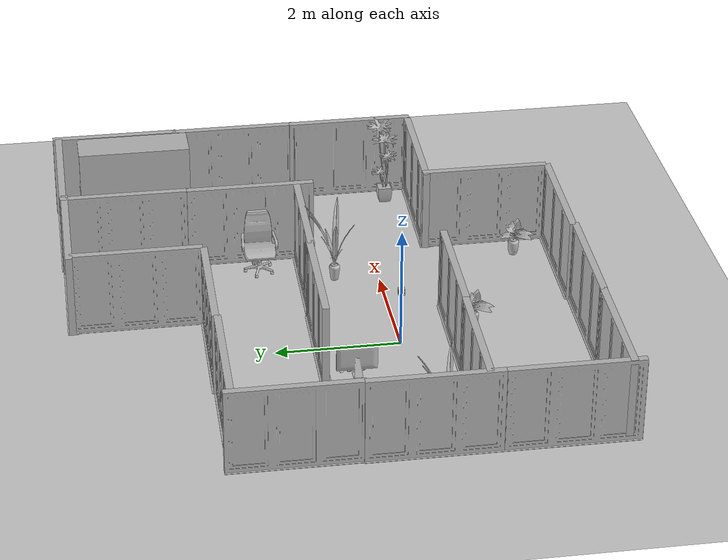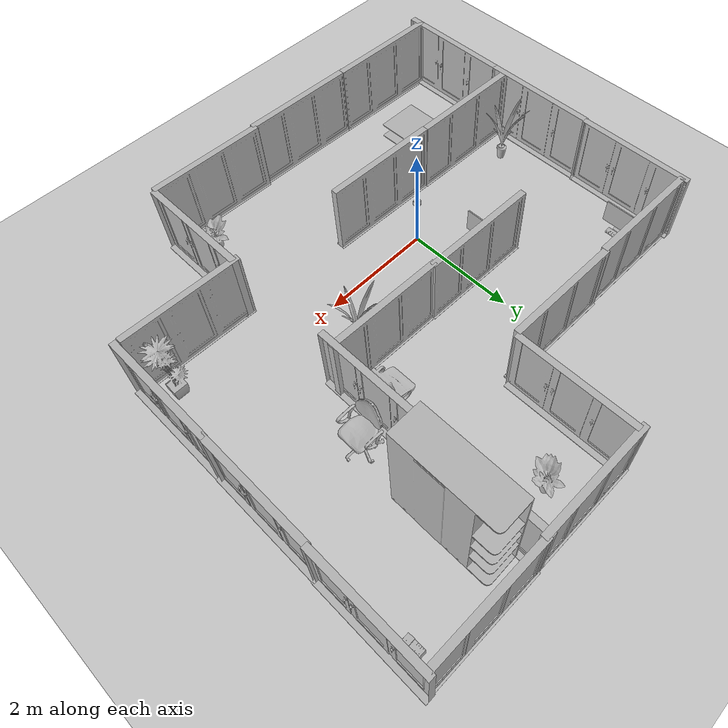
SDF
<sdf version="1.6">
 <world name="default">
  <light name="sun" type="directional">
   <pose>0 0 10 0 -0 0</pose>
   <diffuse>0.8 0.8 0.8 1</diffuse>
   <specular>0.2 0.2 0.2 1</specular>
   <attenuation>
    <range>1000</range>
    <constant>0.9</constant>
    <linear>0.01</linear>
    <quadratic>0.001</quadratic>
   </attenuation>
   <direction>-0.5 0.1 -0.9</direction>
  </light>
  <model name="ground_plane">
   <static>1</static>
   <link name="link">
    <collision name="collision">
     <geometry><plane><normal>0 0 1</normal><size>100 100</size></plane></geometry>
     <surface><friction><ode><mu>100</mu><mu2>50</mu2></ode></friction></surface>
    </collision>
    <visual name="visual">
     <cast_shadows>0</cast_shadows>
     <geometry><plane><normal>0 0 1</normal><size>100 100</size></plane></geometry>
     <material>
      <script><uri>file://media/materials/scripts/gazebo.material</uri><name>Gazebo/Grey</name></script>
     </material>
    </visual>
   </link>
  </model>
  <gravity>0 0 -9.8</gravity>
  <magnetic_field>6e-06 2.3e-05 -4.2e-05</magnetic_field>
  <atmosphere type="adiabatic"/>
  <physics name="default_physics" default="0" type="ode">
   <max_step_size>0.001</max_step_size>
   <real_time_factor>1</real_time_factor>
   <real_time_update_rate>1000</real_time_update_rate>
  </physics>
  <scene><ambient>0.4 0.4 0.4 1</ambient><background>0.7 0.7 0.7 1</background><shadows>1</shadows></scene>
  <audio><device>default</device></audio>
  <spherical_coordinates>
   <surface_model>EARTH_WGS84</surface_model>
   <latitude_deg>0</latitude_deg>
   <longitude_deg>0</longitude_deg>
   <elevation>0</elevation>
   <heading_deg>0</heading_deg>
  </spherical_coordinates>
  <model name="211">
   <pose>-3.12673 0.038973 0 0 -0 0</pose>
   <static>1</static>
   <link name="link">
    <collision name="collision"><geometry><box><size>0.175 2.1 2</size></box></geometry></collision>
    <visual name="visual"><geometry><mesh><uri>model://211/211.dae</uri></mesh></geometry></visual>
   </link>
  </model>
  <model name="211_clone_0">
   <pose>-3.1279 -2.05442 0 0 -0 0</pose>
   <static>1</static>
   <link name="link">
    <collision name="collision"><geometry><box><size>0.175 2.1 2</size></box></geometry></collision>
    <visual name="visual"><geometry><mesh><uri>model://211/211.dae</uri></mesh></geometry></visual>
   </link>
  </model>
  <model name="211_clone_1">
   <pose>3.03127 -1.93504 0 0 -0 0</pose>
   <static>1</static>
   <link name="link">
    <collision name="collision"><geometry><box><size>0.175 2.1 2</size></box></geometry></collision>
    <visual name="visual"><geometry><mesh><uri>model://211/211.dae</uri></mesh></geometry></visual>
   </link>
  </model>
  <model name="211_clone_0_clone_0">
   <pose>-3.10665 2.10308 0 0 -0 0</pose>
   <static>1</static>
   <link name="link">
    <collision name="collision"><geometry><box><size>0.175 2.1 2</size></box></geometry></collision>
    <visual name="visual"><geometry><mesh><uri>model://211/211.dae</uri></mesh></geometry></visual>
   </link>
  </model>
  <model name="211_clone_0_clone_1">
   <pose>2.97825 2.01371 0 0 -0 0</pose>
   <static>1</static>
   <link name="link">
    <collision name="collision"><geometry><box><size>0.175 2.1 2</size></box></geometry></collision>
    <visual name="visual"><geometry><mesh><uri>model://211/211.dae</uri></mesh></geometry></visual>
   </link>
  </model>
  <model name="211_clone_0_clone_clone_0">
   <pose>-2.11975 -2.92144 0 0 0 -1.59198</pose>
   <static>1</static>
   <link name="link">
    <collision name="collision"><geometry><box><size>0.175 2.1 2</size></box></geometry></collision>
    <visual name="visual"><geometry><mesh><uri>model://211/211.dae</uri></mesh></geometry></visual>
   </link>
  </model>
  <model name="211_clone_0_clone_clone_1">
   <pose>-0.068576 -2.97191 0 0 0 -1.59198</pose>
   <static>1</static>
   <link name="link">
    <collision name="collision"><geometry><box><size>0.175 2.1 2</size></box></geometry></collision>
    <visual name="visual"><geometry><mesh><uri>model://211/211.dae</uri></mesh></geometry></visual>
   </link>
  </model>
  <model name="211_clone_0_clone_clone_2">
   <pose>1.97542 -2.9754 0 0 0 -1.59198</pose>
   <static>1</static>
   <link name="link">
    <collision name="collision"><geometry><box><size>0.175 2.1 2</size></box></geometry></collision>
    <visual name="visual"><geometry><mesh><uri>model://211/211.dae</uri></mesh></geometry></visual>
   </link>
  </model>
  <model name="211_clone_0_clone_clone_3">
   <pose>-2.053 3.02059 0 0 0 -1.59198</pose>
   <static>1</static>
   <link name="link">
    <collision name="collision"><geometry><box><size>0.175 2.1 2</size></box></geometry></collision>
    <visual name="visual"><geometry><mesh><uri>model://211/211.dae</uri></mesh></geometry></visual>
   </link>
  </model>
  <model name="211_clone_0_clone_clone_4">
   <pose>0.020026 3.00685 0 0 0 -1.59198</pose>
   <static>1</static>
   <link name="link">
    <collision name="collision"><geometry><box><size>0.175 2.1 2</size></box></geometry></collision>
    <visual name="visual"><geometry><mesh><uri>model://211/211.dae</uri></mesh></geometry></visual>
   </link>
  </model>
  <model name="211_clone_0_clone_0_clone">
   <pose>2.98978 4.09154 0 0 -0 0</pose>
   <static>1</static>
   <link name="link">
    <collision name="collision"><geometry><box><size>0.175 2.1 2</size></box></geometry></collision>
    <visual name="visual"><geometry><mesh><uri>model://211/211.dae</uri></mesh></geometry></visual>
   </link>
  </model>
  <model name="211_clone_0_clone_0_clone_0">
   <pose>1.10358 4.04575 0 0 -0 0</pose>
   <static>1</static>
   <link name="link">
    <collision name="collision"><geometry><box><size>0.175 2.1 2</size></box></geometry></collision>
    <visual name="visual"><geometry><mesh><uri>model://211/211.dae</uri></mesh></geometry></visual>
   </link>
  </model>
  <model name="211_clone_0_clone_clone_4_clone">
   <pose>2.04836 5.09205 0 0 0 -1.59198</pose>
   <static>1</static>
   <link name="link">
    <collision name="collision"><geometry><box><size>0.175 2.1 2</size></box></geometry></collision>
    <visual name="visual"><geometry><mesh><uri>model://211/211.dae</uri></mesh></geometry></visual>
   </link>
  </model>
  <model name="211_clone_0_clone_clone_5">
   <pose>2.00007 1.2688 0 0 0 -1.59198</pose>
   <static>1</static>
   <link name="link">
    <collision name="collision"><geometry><box><size>0.175 2.1 2</size></box></geometry></collision>
    <visual name="visual"><geometry><mesh><uri>model://211/211.dae</uri></mesh></geometry></visual>
   </link>
  </model>
  <model name="211_clone_0_clone_clone_6">
   <pose>-0.022753 1.3299 0 0 0 -1.59198</pose>
   <static>1</static>
   <link name="link">
    <collision name="collision"><geometry><box><size>0.175 2.1 2</size></box></geometry></collision>
    <visual name="visual"><geometry><mesh><uri>model://211/211.dae</uri></mesh></geometry></visual>
   </link>
  </model>
  <model name="211_clone_0_clone_clone_7">
   <pose>-2.0861 -0.780774 0 0 0 -1.59198</pose>
   <static>1</static>
   <link name="link">
    <collision name="collision"><geometry><box><size>0.175 2.1 2</size></box></geometry></collision>
    <visual name="visual"><geometry><mesh><uri>model://211/211.dae</uri></mesh></geometry></visual>
   </link>
  </model>
  <model name="211_clone_0_clone_clone_8">
   <pose>-0.005205 -0.83229 0 0 0 -1.59198</pose>
   <static>1</static>
   <link name="link">
    <collision name="collision"><geometry><box><size>0.175 2.1 2</size></box></geometry></collision>
    <visual name="visual"><geometry><mesh><uri>model://211/211.dae</uri></mesh></geometry></visual>
   </link>
  </model>
  <model name="211_clone_0_clone_clone_10">
   <pose>3.98321 -0.956987 0 0 0 -1.59198</pose>
   <static>1</static>
   <link name="link">
    <collision name="collision"><geometry><box><size>0.175 2.1 2</size></box></geometry></collision>
    <visual name="visual"><geometry><mesh><uri>model://211/211.dae</uri></mesh></geometry></visual>
   </link>
  </model>
  <model name="211_clone_clone">
   <pose>5.10406 0.024895 0 0 -0 0</pose>
   <static>1</static>
   <link name="link">
    <collision name="collision"><geometry><box><size>0.175 2.1 2</size></box></geometry></collision>
    <visual name="visual"><geometry><mesh><uri>model://211/211.dae</uri></mesh></geometry></visual>
   </link>
  </model>
  <model name="211_clone_clone_0">
   <pose>5.1089 2.036 0 0 -0 0</pose>
   <static>1</static>
   <link name="link">
    <collision name="collision"><geometry><box><size>0.175 2.1 2</size></box></geometry></collision>
    <visual name="visual"><geometry><mesh><uri>model://211/211.dae</uri></mesh></geometry></visual>
   </link>
  </model>
  <model name="211_clone_clone_1">
   <pose>5.12226 4.09134 0 0 -0 0</pose>
   <static>1</static>
   <link name="link">
    <collision name="collision"><geometry><box><size>0.175 2.1 2</size></box></geometry></collision>
    <visual name="visual"><geometry><mesh><uri>model://211/211.dae</uri></mesh></geometry></visual>
   </link>
  </model>
  <model name="211_clone_0_clone_clone_9">
   <pose>4.06447 5.07381 0 0 0 -1.59198</pose>
   <static>1</static>
   <link name="link">
    <collision name="collision"><geometry><box><size>0.175 2.1 2</size></box></geometry></collision>
    <visual name="visual"><geometry><mesh><uri>model://211/211.dae</uri></mesh></geometry></visual>
   </link>
  </model>
  <model name="237">
   <pose>-2.57445 -0.258042 0 0 -0 0</pose>
   <static>1</static>
   <link name="link">
    <collision name="collision"><geometry><box><size>0.839248 0.825384 2</size></box></geometry></collision>
    <visual name="visual"><geometry><mesh><uri>model://237/237.dae</uri></mesh></geometry></visual>
   </link>
  </model>
  <model name="542">
   <pose>-1.81945 -1.89409 0 0 -0 0</pose>
   <static>1</static>
   <link name="link">
    <collision name="collision"><geometry><box><size>0.79 0.79 2</size></box></geometry></collision>
    <visual name="visual"><geometry><mesh><uri>model://542/542.dae</uri></mesh></geometry></visual>
   </link>
  </model>
  <model name="623">
   <pose>4.74984 -0.48379 0 0 -0 0</pose>
   <static>1</static>
   <link name="link">
    <collision name="collision"><geometry><box><size>0.529798 0.561408 2</size></box></geometry></collision>
    <visual name="visual"><geometry><mesh><uri>model://623/623.dae</uri></mesh></geometry></visual>
   </link>
  </model>
  <model name="42">
   <pose>3.359 3.88899 0 0 -0 0</pose>
   <static>1</static>
   <link name="link">
    <collision name="collision"><geometry><box><size>0.610353 1.8 2</size></box></geometry></collision>
    <visual name="visual"><geometry><mesh><uri>model://42/42.dae</uri></mesh></geometry></visual>
   </link>
  </model>
  <model name="320">
   <pose>4.88323 4.58265 0 0 -0 0</pose>
   <static>1</static>
   <link name="link">
    <collision name="collision"><geometry><box><size>0.18708 0.300509 2</size></box></geometry></collision>
    <visual name="visual"><geometry><mesh><uri>model://320/320.dae</uri></mesh></geometry></visual>
   </link>
  </model>
  <model name="189">
   <pose>-2.59233 2.44118 0 0 -0 0</pose>
   <static>1</static>
   <link name="link">
    <collision name="collision"><geometry><box><size>0.359507 0.6495 2</size></box></geometry></collision>
    <visual name="visual"><geometry><mesh><uri>model://189/189.dae</uri></mesh></geometry></visual>
   </link>
  </model>
  <model name="130">
   <pose>2.06952 4.4813 0 0 -0 0</pose>
   <static>1</static>
   <link name="link">
    <collision name="collision"><geometry><box><size>0.51716 0.566834 2</size></box></geometry></collision>
    <visual name="visual"><geometry><mesh><uri>model://130/130.dae</uri></mesh></geometry></visual>
   </link>
  </model>
  <model name="130_0">
   <pose>2.52865 -2.36579 0 0 -0 0</pose>
   <static>1</static>
   <link name="link">
    <collision name="collision"><geometry><box><size>0.51716 0.566834 2</size></box></geometry></collision>
    <visual name="visual"><geometry><mesh><uri>model://130/130.dae</uri></mesh></geometry></visual>
   </link>
  </model>
  <model name="130_1">
   <pose>0.345188 -1.23145 0 0 -0 0</pose>
   <static>1</static>
   <link name="link">
    <collision name="collision"><geometry><box><size>0.51716 0.566834 2</size></box></geometry></collision>
    <visual name="visual"><geometry><mesh><uri>model://130/130.dae</uri></mesh></geometry></visual>
   </link>
  </model>
  <model name="237_0">
   <pose>2.13222 0.732133 0 0 -0 0</pose>
   <static>1</static>
   <link name="link">
    <collision name="collision"><geometry><box><size>0.839248 0.825384 2</size></box></geometry></collision>
    <visual name="visual"><geometry><mesh><uri>model://237/237.dae</uri></mesh></geometry></visual>
   </link>
  </model>
  <model name="335">
   <pose>3.40987 2.1346 0 0 -0 0</pose>
   <static>1</static>
   <link name="link">
    <collision name="collision"><geometry><box><size>0.599914 0.62 2</size></box></geometry></collision>
    <visual name="visual"><geometry><mesh><uri>model://335/335.dae</uri></mesh></geometry></visual>
   </link>
  </model>
  <model name="106">
   <pose>2.54719 1.92734 0 0 -0 0</pose>
   <static>1</static>
   <link name="link">
    <collision name="collision"><geometry><box><size>0.550393 0.596196 2</size></box></geometry></collision>
    <visual name="visual"><geometry><mesh><uri>model://106/106.dae</uri></mesh></geometry></visual>
   </link>
  </model>
  <model name="189_0">
   <pose>-0.757434 0.818722 0 0 -0 0</pose>
   <static>1</static>
   <link name="link">
    <collision name="collision"><geometry><box><size>0.359507 0.6495 2</size></box></geometry></collision>
    <visual name="visual"><geometry><mesh><uri>model://189/189.dae</uri></mesh></geometry></visual>
   </link>
  </model>
  <model name="robot_2">
   <link name="my_box">
    <inertial>
     <pose>0 0 0.3 0 -0 0</pose>
     <mass>1</mass>
     <inertia><ixx>0</ixx><ixy>0</ixy><ixz>0</ixz><iyy>0</iyy><iyz>0</iyz><izz>0</izz></inertia>
    </inertial>
    <collision name="my_box_collision"><geometry><box><size>1e-05 1e-05 1e-05</size></box></geometry></collision>
    <visual name="my_box_visual">
     <pose>0 0 0.3 0 -0 0</pose>
     <geometry><box><size>0.1 0.1 0.1</size></box></geometry>
     <material><script><uri>__default__</uri><name>__default__</name></script></material>
    </visual>
    <gravity>0</gravity>
    <sensor name="camera" type="depth">
     <always_on>1</always_on>
     <update_rate>20</update_rate>
     <camera name="__default__">
      <image><format>R8G8B8</format><width>640</width><height>480</height></image>
      <clip><near>0.01</near><far>5</far></clip>
      <horizontal_fov>1.047</horizontal_fov>
     </camera>
     <plugin name="kinect_camera_controller" filename="libgazebo_ros_openni_kinect.so">
      <cameraName>camera2</cameraName>
      <alwaysOn>1</alwaysOn>
      <updateRate>20</updateRate>
      <imageTopicName>rgb/image_raw</imageTopicName>
      <depthImageTopicName>depth/image_raw</depthImageTopicName>
      <pointCloudTopicName>depth/points</pointCloudTopicName>
      <cameraInfoTopicName>rgb/camera_info</cameraInfoTopicName>
      <depthImageCameraInfoTopicName>depth/camera_info</depthImageCameraInfoTopicName>
      <frameName>camera_depth_optical_frame</frameName>
      <baseline>0.0</baseline>
      <distortion_k1>0.0</distortion_k1>
      <distortion_k2>0.0</distortion_k2>
      <distortion_k3>0.0</distortion_k3>
      <distortion_t1>0.0</distortion_t1>
      <distortion_t2>0.0</distortion_t2>
      <CxPrime>0</CxPrime>
      <Cx>0</Cx>
      <Cy>0</Cy>
      <focalLength>0</focalLength>
      <pointCloudCutoff>0.0001</pointCloudCutoff>
      <robotNamespace>/</robotNamespace>
     </plugin>
    </sensor>
   </link>
   <pose>-0 -0 0.656345 2e-06 -3e-06 0</pose>
  </model>
  <model name="robot_1">
   <link name="my_box">
    <inertial>
     <pose>0 0 0.3 0 -0 0</pose>
     <mass>1</mass>
     <inertia><ixx>0</ixx><ixy>0</ixy><ixz>0</ixz><iyy>0</iyy><iyz>0</iyz><izz>0</izz></inertia>
    </inertial>
    <collision name="my_box_collision"><geometry><box><size>1e-05 1e-05 1e-05</size></box></geometry></collision>
    <visual name="my_box_visual">
     <pose>0 0 0.3 0 -0 0</pose>
     <geometry><box><size>0.1 0.1 0.1</size></box></geometry>
     <material><script><uri>__default__</uri><name>__default__</name></script></material>
    </visual>
    <gravity>0</gravity>
    <sensor name="camera" type="depth">
     <always_on>1</always_on>
     <update_rate>20</update_rate>
     <camera name="__default__">
      <image><format>R8G8B8</format><width>640</width><height>480</height></image>
      <clip><near>0.01</near><far>5</far></clip>
      <horizontal_fov>1.047</horizontal_fov>
     </camera>
     <plugin name="kinect_camera_controller" filename="libgazebo_ros_openni_kinect.so">
      <cameraName>camera1</cameraName>
      <alwaysOn>1</alwaysOn>
      <updateRate>20</updateRate>
      <imageTopicName>rgb/image_raw</imageTopicName>
      <depthImageTopicName>depth/image_raw</depthImageTopicName>
      <pointCloudTopicName>depth/points</pointCloudTopicName>
      <cameraInfoTopicName>rgb/camera_info</cameraInfoTopicName>
      <depthImageCameraInfoTopicName>depth/camera_info</depthImageCameraInfoTopicName>
      <frameName>camera_depth_optical_frame</frameName>
      <baseline>0.0</baseline>
      <distortion_k1>0.0</distortion_k1>
      <distortion_k2>0.0</distortion_k2>
      <distortion_k3>0.0</distortion_k3>
      <distortion_t1>0.0</distortion_t1>
      <distortion_t2>0.0</distortion_t2>
      <CxPrime>0</CxPrime>
      <Cx>0</Cx>
      <Cy>0</Cy>
      <focalLength>0</focalLength>
      <pointCloudCutoff>0.0001</pointCloudCutoff>
      <robotNamespace>/</robotNamespace>
     </plugin>
    </sensor>
   </link>
   <pose>-0 -0 0.65534 2e-06 -3e-06 0</pose>
  </model>
  <model name="robot_0">
   <link name="my_box">
    <inertial>
     <pose>0 0 0.3 0 -0 0</pose>
     <mass>1</mass>
     <inertia><ixx>0</ixx><ixy>0</ixy><ixz>0</ixz><iyy>0</iyy><iyz>0</iyz><izz>0</izz></inertia>
    </inertial>
    <collision name="my_box_collision"><geometry><box><size>1e-05 1e-05 1e-05</size></box></geometry></collision>
    <visual name="my_box_visual">
     <pose>0 0 0.3 0 -0 0</pose>
     <geometry><box><size>0.1 0.1 0.1</size></box></geometry>
     <material><script><uri>__default__</uri><name>__default__</name></script></material>
    </visual>
    <gravity>0</gravity>
    <sensor name="camera" type="depth">
     <always_on>1</always_on>
     <update_rate>20</update_rate>
     <camera name="__default__">
      <image><format>R8G8B8</format><width>640</width><height>480</height></image>
      <clip><near>0.01</near><far>20</far></clip>
      <horizontal_fov>1.047</horizontal_fov>
     </camera>
     <plugin name="kinect_camera_controller" filename="libgazebo_ros_openni_kinect.so">
      <cameraName>camera0</cameraName>
      <alwaysOn>1</alwaysOn>
      <updateRate>20</updateRate>
      <imageTopicName>rgb/image_raw</imageTopicName>
      <depthImageTopicName>depth/image_raw</depthImageTopicName>
      <pointCloudTopicName>depth/points</pointCloudTopicName>
      <cameraInfoTopicName>rgb/camera_info</cameraInfoTopicName>
      <depthImageCameraInfoTopicName>depth/camera_info</depthImageCameraInfoTopicName>
      <frameName>camera_depth_optical_frame</frameName>
      <baseline>0.0</baseline>
      <distortion_k1>0.0</distortion_k1>
      <distortion_k2>0.0</distortion_k2>
      <distortion_k3>0.0</distortion_k3>
      <distortion_t1>0.0</distortion_t1>
      <distortion_t2>0.0</distortion_t2>
      <CxPrime>0</CxPrime>
      <Cx>0</Cx>
      <Cy>0</Cy>
      <focalLength>0</focalLength>
      <pointCloudCutoff>0.0001</pointCloudCutoff>
      <robotNamespace>/</robotNamespace>
     </plugin>
    </sensor>
   </link>
   <static>0</static>
   <plugin name="p3d_base_controller" filename="libgazebo_ros_p3d.so">
    <alwaysOn>1</alwaysOn>
    <updateRate>300.0</updateRate>
    <bodyName>my_box</bodyName>
    <topicName>pose_ground_truth0</topicName>
    <gaussianNoise>0</gaussianNoise>
    <frameName>map</frameName>
    <xyzOffsets>0 0 0</xyzOffsets>
    <rpyOffsets>0 0 0</rpyOffsets>
    <robotNamespace>/</robotNamespace>
   </plugin>
   <pose>-0 -0 0.654335 2e-06 -3e-06 0</pose>
  </model>
 </world>
</sdf>
